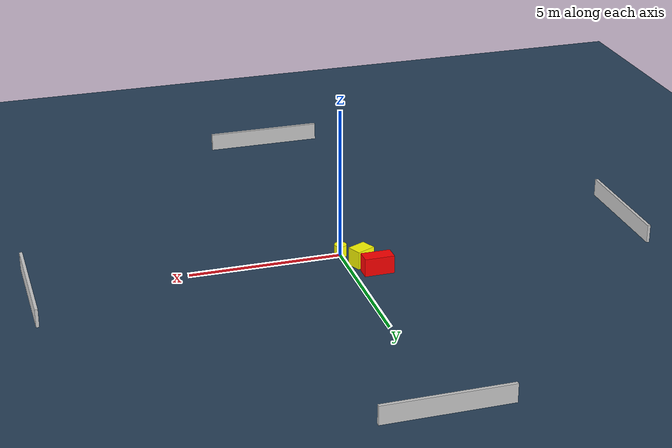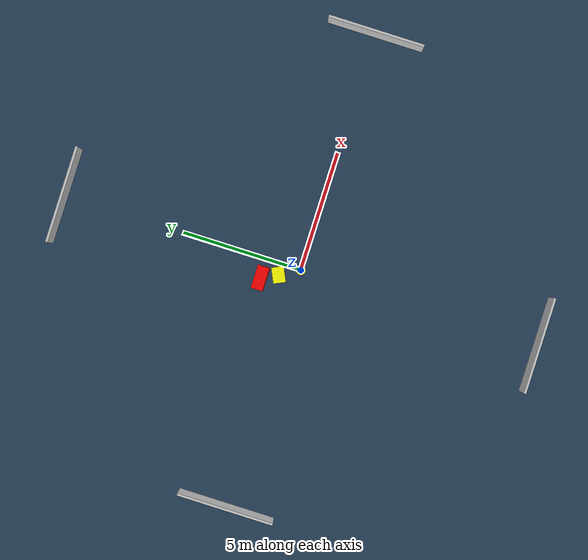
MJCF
<?xml version="1.0" ?>
<mujoco model="generated_environment">
  <option timestep="0.01" integrator="RK4" cone="elliptic"/>
  <default>
    <geom density="1"/>
  </default>
  <asset>
    <texture builtin="gradient" height="3072" name="skybox" rgb1="0.3 0.5 0.7" rgb2="0 0 0" type="skybox" width="512"/>
    <texture builtin="checker" height="300" name="groundplane" rgb1="0.2 0.3 0.4" rgb2="0.1 0.2 0.3" type="2d" width="300"/>
    <material name="groundplane" reflectance="0.2" texrepeat="5 5" texture="groundplane"/>
  </asset>
  <worldbody>
    <light dir="0 0 -1" directional="true" pos="0 0 1.5"/>
    <geom condim="3" friction="0.5 0.005 0.001" material="groundplane" name="floor" pos="0 0 0" size="0 0 0.05" type="plane"/>
    <body name="walls">
      <geom name="wall_1" condim="4" pos="-10.0 0.0 0.3" rgba="0.800000011920929 0.800000011920929 0.800000011920929 1.0" size="0.05 2.0 0.3" type="box"/>
      <geom name="wall_2" condim="4" pos="10.0 0.0 0.3" rgba="0.800000011920929 0.800000011920929 0.800000011920929 1.0" size="0.05 2.0 0.3" type="box"/>
      <geom name="wall_3" condim="4" pos="0.0 -10.0 0.3" rgba="0.800000011920929 0.800000011920929 0.800000011920929 1.0" size="2.0 0.05 0.3" type="box"/>
      <geom name="wall_4" condim="4" pos="0.0 10.0 0.3" rgba="0.800000011920929 0.800000011920929 0.800000011920929 1.0" size="2.0 0.05 0.3" type="box"/>
    </body>
    <body name="robot">
      <joint name="joint_x" type="slide" pos="0 0 0" axis="1 0 0"/>
      <joint name="joint_y" type="slide" pos="0 0 0" axis="0 1 0"/>
      <geom name="robot" type="cylinder" pos="0.0 0.0 0.2" size="0.2 0.2 0.0" mass="5.0" friction="1.0 0.005 0.0001" condim="4" rgba="1.0 1.0 0.0 1.0"/>
    </body>
    <body name="obstacle_1_movable">
      <geom name="obstacle_1_movable" condim="4" pos="-0.4509333960860137 0.7906410414309178 0.3" euler="0 0 24.982570835620205" friction="0.0 0.005 0.001" rgba="1.0 1.0 0.0 1.0" size="0.323243150942296 0.24996844398275214 0.3" type="box" mass="0.1"/>
      <joint type="free"/>
    </body>
    <body name="obstacle_2_static">
      <geom name="obstacle_2_static" condim="4" pos="-0.787187459305939 1.4506963666535044 0.3" euler="0 0 90.31016971471331" friction="0.0 0.005 0.001" rgba="1.0 0.0 0.0 1.0" size="0.24029225189262426 0.48673226481891707 0.3" type="box"/>
    </body>
  </worldbody>
  <actuator>
    <motor name="actuator_x" joint="joint_x" gear="1" ctrlrange="-1 1"/>
    <motor name="actuator_y" joint="joint_y" gear="1" ctrlrange="-1 1"/>
  </actuator>
</mujoco>
